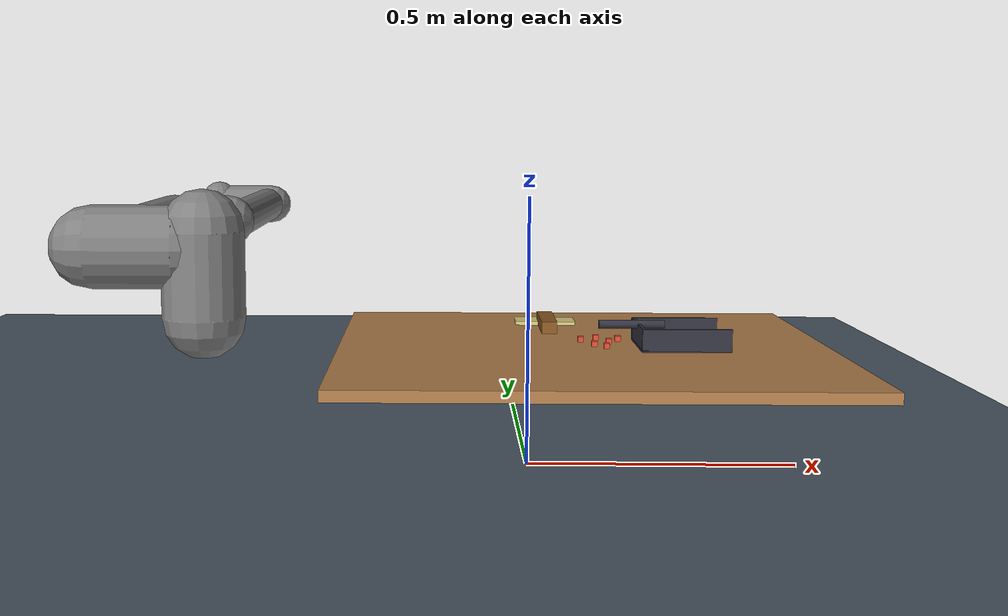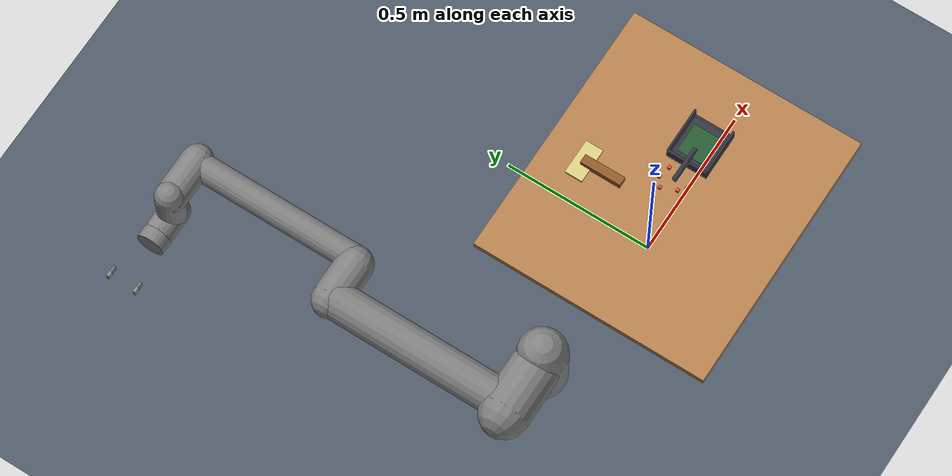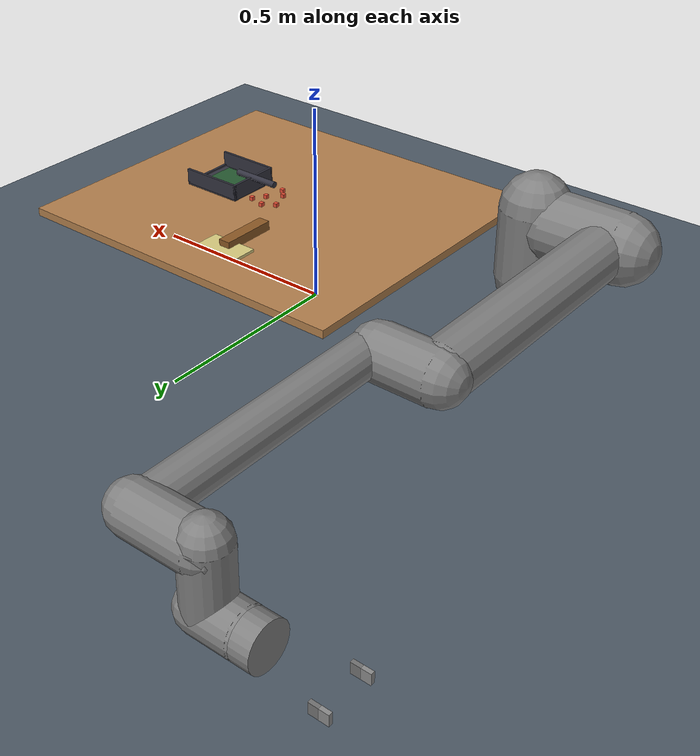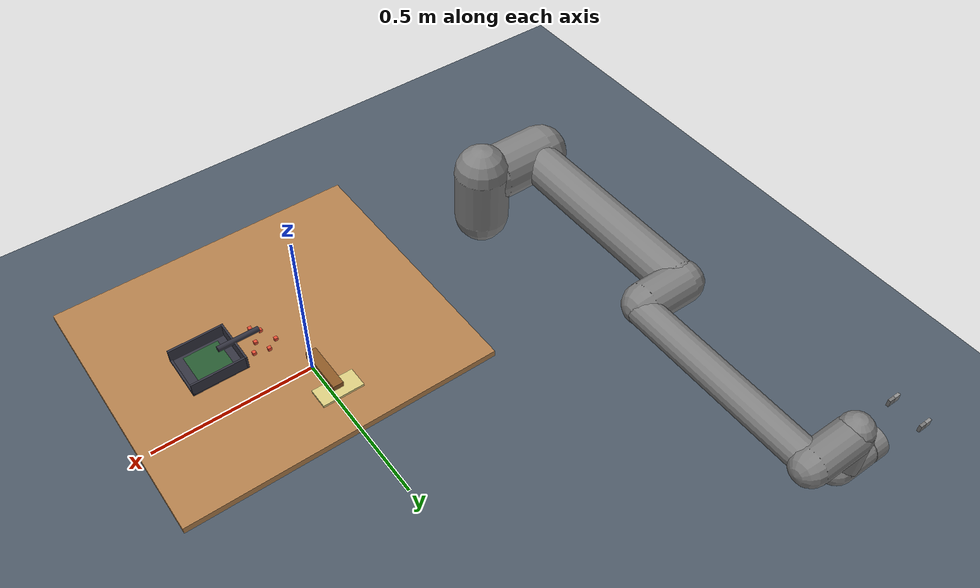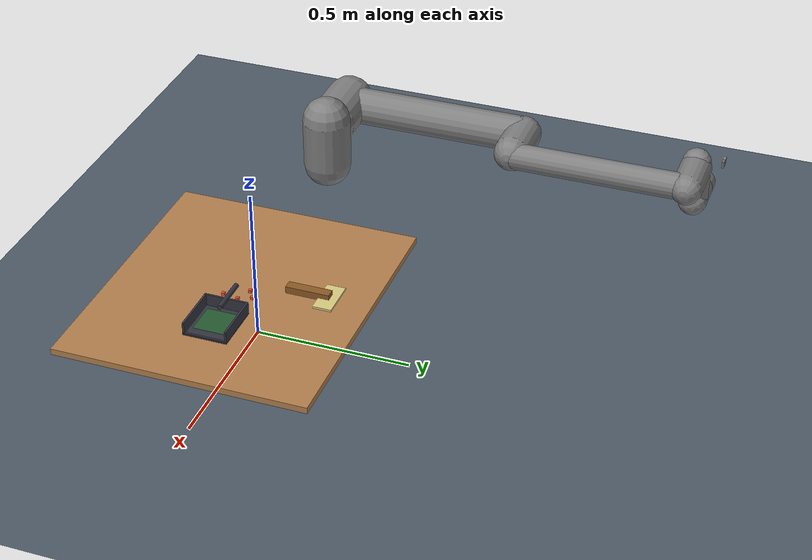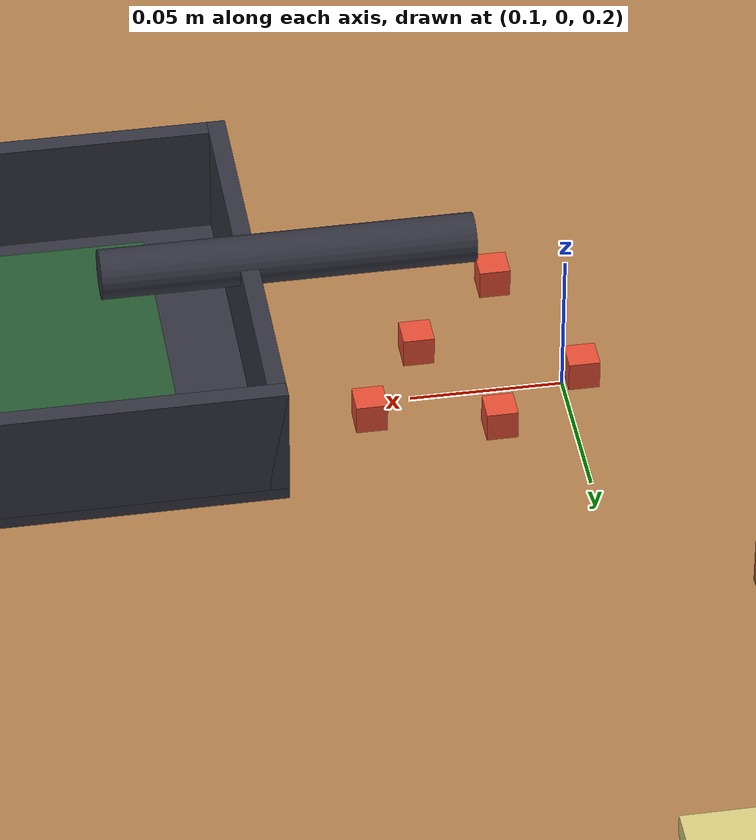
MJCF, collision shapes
<mujoco model="corl_dustpan_ur10e">

  <compiler angle="radian" autolimits="true"
            meshdir="../../../mujoco_menagerie/universal_robots_ur10e/assets"/>

  <include file="_ur10e_base.xml"/>

  <visual>
    <headlight diffuse="0.4 0.4 0.4" ambient="0.2 0.2 0.2" specular="0 0 0"/>
    <rgba haze="0.15 0.25 0.35 1"/>
    <global azimuth="120" elevation="-20" offwidth="800" offheight="600"/>
  </visual>

  <statistic center="0 0 0.5" extent="1.5"/>

  <asset>
    <texture type="skybox" builtin="gradient" rgb1="0.3 0.5 0.8"
             rgb2="0.1 0.2 0.4" width="512" height="3072"/>
    <texture type="2d" name="lab_floor" builtin="checker"
             rgb1="0.35 0.4 0.45" rgb2="0.25 0.3 0.35"
             width="512" height="512" mark="cross" markrgb="0.8 0.8 0.9"/>
    <material name="groundplane" texture="lab_floor" texrepeat="20 20"
              reflectance="0.3" shininess="0.1"/>
    <material name="table_mat" rgba="0.7 0.5 0.3 1"
              reflectance="0.4" shininess="0.3"/>

    <!-- Brush materials -->
    <material name="brush_handle_mat" rgba="0.55 0.35 0.15 1"
              reflectance="0.2" shininess="0.3"/>
    <material name="brush_bristles_mat" rgba="0.85 0.80 0.50 1"
              reflectance="0.05" shininess="0.05"/>

    <!-- Dustpan material -->
    <material name="dustpan_mat" rgba="0.2 0.2 0.25 1"
              reflectance="0.3" shininess="0.4"/>

    <!-- Debris material -->
    <material name="debris_mat" rgba="0.9 0.3 0.2 1"
              reflectance="0.1" shininess="0.1"/>
  </asset>

  <worldbody>
    <light pos="0 0 4" dir="0 0 -1" directional="true" diffuse="0.5 0.5 0.5"/>
    <light pos="2 2 3" dir="-0.5 -0.5 -1" diffuse="0.25 0.25 0.25"/>
    <light pos="0 -2 3" dir="0 0.5 -1" diffuse="0.2 0.2 0.2"/>
    <geom name="floor" size="10 10 0.01" type="plane" material="groundplane"/>

    <!-- Table: top surface at z=0.225 to match UR10e base height -->
    <body name="table" pos="0.1 0 0.215">
      <geom name="table_top" type="box" size="0.45 0.40 0.01"
            pos="0 0 0" material="table_mat"
            friction="1.5 0.8 0.001"/>
    </body>

    <!-- ================================================================
         TASK OBJECTS: dustpan, brush, debris
         ================================================================ -->

    <body name="brush" pos="0.05 0.20 0.236">
      <freejoint name="brush_free"/>
      <inertial pos="0 0 0" mass="0.10"
                diaginertia="0.00015 0.00002 0.00015"/>
      <!-- Handle: box along Y. Width 30mm gives firm Robotiq pad
           contact. The pad_box1/pad_box2 geoms are 9.375mm tall each,
           so a 30mm wide handle ensures full pad wrap. -->
      <geom name="brush_handle" type="box" size="0.015 0.070 0.012"
            pos="0 0 0"
            material="brush_handle_mat"
            condim="6" friction="3.0 1.5 0.005"
            solimp="0.9 0.95 0.005" solref="0.02 1"
            priority="1"/>
      <!-- Bristle pad: LARGE box extending below the handle at one end.
           120x60x12mm -- clearly visible as the sweeping surface.
           Friction high enough to push debris. -->
      <geom name="brush_bristles" type="box" size="0.060 0.030 0.008"
            pos="0 0.065 -0.012"
            material="brush_bristles_mat"
            condim="6" friction="1.5 0.8 0.005"
            solimp="0.9 0.95 0.005" solref="0.02 1"/>
      <!-- Bristle fringe: dark visual at bottom of bristle pad -->
      <geom name="brush_fringe" type="box" size="0.058 0.028 0.003"
            pos="0 0.065 -0.017"
            rgba="0.65 0.55 0.30 1"
            condim="6" friction="1.5 0.8 0.005"
            solimp="0.9 0.95 0.005" solref="0.02 1"/>
    </body>

    <body name="dustpan" pos="0.28 0.0 0.225">
      <!-- Pan floor -->
      <geom name="dustpan_floor" type="box" size="0.08 0.07 0.002"
            pos="0 0 0.002" material="dustpan_mat"
            friction="1.5 0.5 0.001"/>
      <!-- Back wall (far from opening, at -X side) -->
      <geom name="dustpan_back" type="box" size="0.003 0.07 0.020"
            pos="-0.077 0 0.022" material="dustpan_mat"/>
      <!-- Side walls -->
      <geom name="dustpan_left" type="box" size="0.08 0.003 0.020"
            pos="0 0.067 0.022" material="dustpan_mat"/>
      <geom name="dustpan_right" type="box" size="0.08 0.003 0.020"
            pos="0 -0.067 0.022" material="dustpan_mat"/>
      <!-- Front lip (low, just 5mm, so debris can slide in) -->
      <geom name="dustpan_lip" type="box" size="0.003 0.07 0.003"
            pos="0.077 0 0.005" material="dustpan_mat"/>
      <!-- Handle stub at the back -->
      <geom name="dustpan_handle" type="cylinder" size="0.008 0.06"
            pos="-0.090 0 0.040" quat="0.707107 0 0.707107 0"
            material="dustpan_mat" contype="0" conaffinity="0"/>
      <!-- Target site for measuring debris arrival -->
      <site name="dustpan_center" pos="0 0 0.010" size="0.05 0.05 0.001"
            rgba="0 1 0 0.15" type="box"/>
    </body>

    <!--
      Debris: 6 small cubes scattered between the brush and dustpan.
      Each is a 10mm cube with freejoint, placed on the table surface.
      Spread around x=0.20..0.30, y=-0.08..0.08.
    -->
    <body name="debris_1" pos="0.10 0.03 0.232">
      <freejoint name="debris_1_free"/>
      <inertial pos="0 0 0" mass="0.003" diaginertia="5e-8 5e-8 5e-8"/>
      <geom name="debris_1_geom" type="box" size="0.005 0.005 0.005"
            material="debris_mat" condim="6"
            friction="0.5 0.2 0.001" solref="0.02 1"
            solimp="0.9 0.95 0.005"/>
    </body>

    <body name="debris_2" pos="0.12 -0.02 0.232">
      <freejoint name="debris_2_free"/>
      <inertial pos="0 0 0" mass="0.003" diaginertia="5e-8 5e-8 5e-8"/>
      <geom name="debris_2_geom" type="box" size="0.005 0.005 0.005"
            material="debris_mat" condim="6"
            friction="0.5 0.2 0.001" solref="0.02 1"
            solimp="0.9 0.95 0.005"/>
    </body>

    <body name="debris_3" pos="0.15 0.01 0.232">
      <freejoint name="debris_3_free"/>
      <inertial pos="0 0 0" mass="0.003" diaginertia="5e-8 5e-8 5e-8"/>
      <geom name="debris_3_geom" type="box" size="0.005 0.005 0.005"
            material="debris_mat" condim="6"
            friction="0.5 0.2 0.001" solref="0.02 1"
            solimp="0.9 0.95 0.005"/>
    </body>

    <body name="debris_4" pos="0.14 -0.04 0.232">
      <freejoint name="debris_4_free"/>
      <inertial pos="0 0 0" mass="0.003" diaginertia="5e-8 5e-8 5e-8"/>
      <geom name="debris_4_geom" type="box" size="0.005 0.005 0.005"
            material="debris_mat" condim="6"
            friction="0.5 0.2 0.001" solref="0.02 1"
            solimp="0.9 0.95 0.005"/>
    </body>

    <body name="debris_5" pos="0.17 0.04 0.232">
      <freejoint name="debris_5_free"/>
      <inertial pos="0 0 0" mass="0.003" diaginertia="5e-8 5e-8 5e-8"/>
      <geom name="debris_5_geom" type="box" size="0.005 0.005 0.005"
            material="debris_mat" condim="6"
            friction="0.5 0.2 0.001" solref="0.02 1"
            solimp="0.9 0.95 0.005"/>
    </body>

    <body name="debris_6" pos="0.13 0.05 0.232">
      <freejoint name="debris_6_free"/>
      <inertial pos="0 0 0" mass="0.003" diaginertia="5e-8 5e-8 5e-8"/>
      <geom name="debris_6_geom" type="box" size="0.005 0.005 0.005"
            material="debris_mat" condim="6"
            friction="0.5 0.2 0.001" solref="0.02 1"
            solimp="0.9 0.95 0.005"/>
    </body>

    <!-- ================================================================
         CAMERAS
         ================================================================ -->
    <body name="cam_target" pos="0.2 0 0.25">
      <site name="cam_target_site" pos="0 0 0" size="0.001" rgba="0 0 0 0"/>
    </body>
    <body name="cam_agent_body" pos="1.2 0.0 0.8">
      <camera name="agentview" fovy="55" pos="0 0 0"
              mode="targetbody" target="cam_target"/>
    </body>
    <body name="cam_side_body" pos="0.2 -1.2 0.6">
      <camera name="sideview" fovy="55" pos="0 0 0"
              mode="targetbody" target="cam_target"/>
    </body>
    <body name="cam_top_body" pos="0.2 0 1.5">
      <camera name="topview" fovy="50" pos="0 0 0"
              mode="targetbody" target="cam_target"/>
    </body>
  </worldbody>

  <keyframe>
    <key name="home"
         qpos="0 -1.5708 1.5708 -1.5708 -1.5708 0 0 0 0 0 0 0 0 0
                0.05 0.20 0.236 1 0 0 0
                0.10 0.03 0.232 1 0 0 0
                0.12 -0.02 0.232 1 0 0 0
                0.15 0.01 0.232 1 0 0 0
                0.14 -0.04 0.232 1 0 0 0
                0.17 0.04 0.232 1 0 0 0
                0.13 0.05 0.232 1 0 0 0"
         ctrl="0 -1.5708 1.5708 -1.5708 -1.5708 0 0"/>
  </keyframe>
</mujoco>

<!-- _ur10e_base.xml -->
<mujoco model="ur10e_base">

  <option impratio="10" integrator="RK4" timestep="0.002"/>

  <default class="main">
    <default class="ur10e">
      <material shininess="0.25"/>
      <joint range="-6.28319 6.28319" armature="0.1"/>
      <general ctrlrange="-6.2831 6.2831" biastype="affine"
               gainprm="5000 0 0 0 0 0 0 0 0 0"
               biasprm="0 -5000 -500 0 0 0 0 0 0 0"/>
      <default class="size4">
        <joint damping="10"/>
        <general forcerange="-330 330"/>
      </default>
      <default class="size3">
        <joint damping="5"/>
        <general forcerange="-150 150"/>
        <default class="size3_limited">
          <joint range="-3.1415 3.1415"/>
          <general ctrlrange="-3.1415 3.1415"/>
        </default>
      </default>
      <default class="size2">
        <joint damping="2"/>
        <general forcerange="-56 56"/>
      </default>
      <default class="visual">
        <geom type="mesh" contype="0" conaffinity="0" group="2"/>
      </default>
      <default class="collision">
        <geom type="capsule" group="3"/>
        <default class="eef_collision">
          <geom type="cylinder"/>
        </default>
      </default>
    </default>
    <default class="2f85">
      <mesh scale="0.001 0.001 0.001"/>
      <general biastype="affine"/>
      <default class="driver">
        <joint solreflimit="0.005 1" solimplimit="0.95 0.99 0.001 0.5 2"
               range="0 0.8" armature="0.005" damping="0.1"/>
      </default>
      <default class="follower">
        <joint solreflimit="0.005 1" solimplimit="0.95 0.99 0.001 0.5 2"
               range="-0.872664 0.872664"/>
      </default>
      <default class="spring_link">
        <joint springref="2.62" stiffness="0.05" range="-0.296706 0.8"
               damping="0.00125"/>
      </default>
      <default class="coupler">
        <joint solreflimit="0.005 1" solimplimit="0.95 0.99 0.001 0.5 2"
               range="-1.57 0"/>
      </default>
      <default class="visual2">
        <geom type="mesh" contype="0" conaffinity="0" group="2"/>
      </default>
      <default class="collision2">
        <geom type="mesh" group="3"/>
        <default class="pad_box1">
          <geom size="0.011 0.004 0.009375" type="box" priority="1"
                friction="0.7 0.005 0.0001" solref="0.004 1"
                solimp="0.95 0.99 0.001 0.5 2" rgba="0.55 0.55 0.55 1"/>
        </default>
        <default class="pad_box2">
          <geom size="0.011 0.004 0.009375" type="box" priority="1"
                friction="0.6 0.005 0.0001" solref="0.004 1"
                solimp="0.95 0.99 0.001 0.5 2" rgba="0.45 0.45 0.45 1"/>
        </default>
      </default>
    </default>
  </default>

  <asset>
    <!-- UR10e materials -->
    <material name="black" class="ur10e" rgba="0.033 0.033 0.033 1"/>
    <material name="jointgray" class="ur10e" rgba="0.278 0.278 0.278 1"/>
    <material name="linkgray" class="ur10e" rgba="0.82 0.82 0.82 1"/>
    <material name="urblue" class="ur10e" rgba="0.49 0.678 0.8 1"/>
    <!-- Robotiq 2F-85 materials -->
    <material name="metal" rgba="0.58 0.58 0.58 1"/>
    <material name="silicone" rgba="0.1882 0.1882 0.1882 1"/>
    <material name="gray" rgba="0.4627 0.4627 0.4627 1"/>
    <material name="black2" rgba="0.149 0.149 0.149 1"/>

    <!-- UR10e meshes (resolved via parent meshdir) -->
    <mesh name="base_0" file="base_0.obj"/>
    <mesh name="base_1" file="base_1.obj"/>
    <mesh name="shoulder_0" file="shoulder_0.obj"/>
    <mesh name="shoulder_1" file="shoulder_1.obj"/>
    <mesh name="shoulder_2" file="shoulder_2.obj"/>
    <mesh name="upperarm_0" file="upperarm_0.obj"/>
    <mesh name="upperarm_1" file="upperarm_1.obj"/>
    <mesh name="upperarm_2" file="upperarm_2.obj"/>
    <mesh name="upperarm_3" file="upperarm_3.obj"/>
    <mesh name="forearm_0" file="forearm_0.obj"/>
    <mesh name="forearm_1" file="forearm_1.obj"/>
    <mesh name="forearm_2" file="forearm_2.obj"/>
    <mesh name="forearm_3" file="forearm_3.obj"/>
    <mesh name="wrist1_0" file="wrist1_0.obj"/>
    <mesh name="wrist1_1" file="wrist1_1.obj"/>
    <mesh name="wrist1_2" file="wrist1_2.obj"/>
    <mesh name="wrist2_0" file="wrist2_0.obj"/>
    <mesh name="wrist2_1" file="wrist2_1.obj"/>
    <mesh name="wrist2_2" file="wrist2_2.obj"/>
    <mesh name="wrist3" file="wrist3.obj"/>

    <!-- Robotiq 2F-85 meshes (relative to UR10e meshdir) -->
    <mesh name="base_mount" class="2f85"
          file="../../robotiq_2f85/assets/base_mount.stl"/>
    <mesh name="base" class="2f85"
          file="../../robotiq_2f85/assets/base.stl"/>
    <mesh name="driver" class="2f85"
          file="../../robotiq_2f85/assets/driver.stl"/>
    <mesh name="coupler" class="2f85"
          file="../../robotiq_2f85/assets/coupler.stl"/>
    <mesh name="follower" class="2f85"
          file="../../robotiq_2f85/assets/follower.stl"/>
    <mesh name="pad" class="2f85"
          file="../../robotiq_2f85/assets/pad.stl"/>
    <mesh name="silicone_pad" class="2f85"
          file="../../robotiq_2f85/assets/silicone_pad.stl"/>
    <mesh name="spring_link" class="2f85"
          file="../../robotiq_2f85/assets/spring_link.stl"/>
  </asset>

  <worldbody>
    <!-- UR10e + Robotiq 2F-85 kinematic chain.
         Base at (-0.6, 0, 0.225), rotated 90deg about Z to face +X. -->
    <body name="base" childclass="ur10e" pos="-0.6 0 0.225"
          quat="0.707107 0 0 0.707107" gravcomp="0">
      <inertial pos="0 0 0" mass="4" diaginertia="0.00610633 0.00610633 0.01125"/>
      <geom class="visual" material="black" mesh="base_0"/>
      <geom class="visual" material="jointgray" mesh="base_1"/>
      <body name="shoulder_link" pos="0 0 0.181" gravcomp="0">
        <inertial pos="0 0 0" mass="7.778"
                  diaginertia="0.0314743 0.0314743 0.0218756"/>
        <joint name="shoulder_pan_joint" class="size4" axis="0 0 1"/>
        <geom class="visual" material="urblue" mesh="shoulder_0"/>
        <geom class="visual" material="black" mesh="shoulder_1"/>
        <geom class="visual" material="jointgray" mesh="shoulder_2"/>
        <geom class="collision" size="0.078 0.08" pos="0 0 -0.05"/>
        <body name="upper_arm_link" pos="0 0.176 0" quat="0.707107 0 0.707107 0" gravcomp="0">
          <inertial pos="0 0 0.3065" mass="12.93"
                    diaginertia="0.423074 0.423074 0.0363656"/>
          <joint name="shoulder_lift_joint" class="size4" axis="0 1 0"/>
          <geom class="visual" material="black" mesh="upperarm_0"/>
          <geom class="visual" material="jointgray" mesh="upperarm_1"/>
          <geom class="visual" material="urblue" mesh="upperarm_2"/>
          <geom class="visual" material="linkgray" mesh="upperarm_3"/>
          <geom class="collision" size="0.078 0.08" pos="0 -0.05 0"
                quat="0.707107 0.707107 0 0"/>
          <geom class="collision" size="0.06 0.3" pos="0 0 0.3"/>
          <body name="forearm_link" pos="0 -0.137 0.613" gravcomp="0">
            <inertial pos="0 0 0.2855" mass="3.87"
                      diaginertia="0.11059 0.11059 0.0108844"/>
            <joint name="elbow_joint" class="size3_limited" axis="0 1 0"/>
            <geom class="visual" material="urblue" mesh="forearm_0"/>
            <geom class="visual" material="black" mesh="forearm_1"/>
            <geom class="visual" material="jointgray" mesh="forearm_2"/>
            <geom class="visual" material="linkgray" mesh="forearm_3"/>
            <geom class="collision" size="0.058 0.065" pos="0 0.08 0"
                  quat="0.707107 0.707107 0 0"/>
            <geom class="collision" size="0.043 0.28" pos="0 0 0.29"/>
            <body name="wrist_1_link" pos="0 0 0.571" quat="0.707107 0 0.707107 0" gravcomp="0">
              <inertial pos="0 0.135 0" quat="0.5 0.5 -0.5 0.5" mass="1.96"
                        diaginertia="0.0055125 0.00510825 0.00510825"/>
              <joint name="wrist_1_joint" class="size2" axis="0 1 0"/>
              <geom class="visual" material="black" mesh="wrist1_0"/>
              <geom class="visual" material="urblue" mesh="wrist1_1"/>
              <geom class="visual" material="jointgray" mesh="wrist1_2"/>
              <geom class="collision" size="0.05 0.07" pos="0 0.06 0"
                    quat="0.707107 0.707107 0 0"/>
              <body name="wrist_2_link" pos="0 0.135 0" gravcomp="0">
                <inertial pos="0 0 0.12" quat="0.5 0.5 -0.5 0.5" mass="1.96"
                          diaginertia="0.0055125 0.00510825 0.00510825"/>
                <joint name="wrist_2_joint" class="size2" axis="0 0 1"/>
                <geom class="visual" material="black" mesh="wrist2_0"/>
                <geom class="visual" material="urblue" mesh="wrist2_1"/>
                <geom class="visual" material="jointgray" mesh="wrist2_2"/>
                <geom class="collision" size="0.046 0.065" pos="0 0 0.05"/>
                <geom class="collision" size="0.046 0.043" pos="0 0.028 0.12"
                      quat="0.707107 0.707107 0 0"/>
                <body name="wrist_3_link" pos="0 0 0.12" gravcomp="0">
                  <inertial pos="0 0.092 0" quat="0 0.707107 -0.707107 0"
                            mass="0.202"
                            diaginertia="0.000204525 0.000144346 0.000144346"/>
                  <joint name="wrist_3_joint" class="size2" axis="0 1 0"/>
                  <geom class="visual" material="linkgray" mesh="wrist3"/>
                  <geom class="eef_collision" size="0.046 0.02" pos="0 0.097 0"
                        quat="0.707107 0.707107 0 0"/>
                  <site name="attachment_site" pos="0 0.1 0"
                        quat="-0.707107 0.707107 0 0"
                        size="0.001" group="4" rgba="255 0 0 1"/>
                  <site name="ft_sensor_site" pos="0 0.1 0"
                        quat="-0.707107 0.707107 0 0"
                        size="0.001" group="5" rgba="0 255 0 0.5"/>
                  <!-- Robotiq 2F-85 gripper -->
                  <body name="base_mount" childclass="2f85"
                        pos="0 0.115 0" quat="-0.707107 0.707107 0 0" gravcomp="0">
                    <geom class="visual2" material="black2" mesh="base_mount"/>
                    <geom class="collision2" mesh="base_mount"/>
                    <body name="base2" pos="0 0 0.0038"
                          quat="0.707107 0 0 -0.707107" gravcomp="0">
                      <inertial pos="0 -2.70394e-05 0.0354675"
                                quat="0.999999 -0.00152849 0 0"
                                mass="0.777441"
                                diaginertia="0.000260285 0.000225381 0.000152708"/>
                      <geom class="visual2" material="black2" mesh="base"/>
                      <geom class="collision2" mesh="base"/>
                      <site name="pinch" pos="0 0 0.145" group="5"
                            rgba="255 0.9 0.9 1"/>
                      <!-- Right finger linkage -->
                      <body name="right_driver" pos="0 0.0306011 0.054904" gravcomp="0">
                        <inertial pos="2.96931e-12 0.0177547 0.00107314"
                                  quat="0.681301 0.732003 0 0" mass="0.00899563"
                                  diaginertia="1.72352e-06 1.60906e-06 3.22006e-07"/>
                        <joint name="right_driver_joint" class="driver" axis="1 0 0" armature="0.01"/>
                        <geom class="visual2" material="gray" mesh="driver"/>
                        <geom class="collision2" mesh="driver"/>
                        <body name="right_coupler" pos="0 0.0315 -0.0041" gravcomp="0">
                          <inertial pos="0 0.00301209 0.0232175"
                                    quat="0.705636 -0.0455904 0.0455904 0.705636"
                                    mass="0.0140974"
                                    diaginertia="4.16206e-06 3.52216e-06 8.88131e-07"/>
                          <joint name="right_coupler_joint" class="coupler" axis="1 0 0"/>
                          <geom class="visual2" material="black2" mesh="coupler"/>
                          <geom class="collision2" mesh="coupler"/>
                        </body>
                      </body>
                      <body name="right_spring_link" pos="0 0.0132 0.0609" gravcomp="0">
                        <inertial pos="-8.65005e-09 0.0181624 0.0212658"
                                  quat="0.663403 -0.244737 0.244737 0.663403"
                                  mass="0.0221642"
                                  diaginertia="8.96853e-06 6.71733e-06 2.63931e-06"/>
                        <joint name="right_spring_link_joint" class="spring_link" axis="1 0 0"
                               springref="2.62" armature="0.001"/>
                        <geom class="visual2" material="black2" mesh="spring_link"/>
                        <geom class="collision2" mesh="spring_link"/>
                        <body name="right_follower" pos="0 0.055 0.0375" gravcomp="0">
                          <inertial pos="0 -0.011046 0.0124786"
                                    quat="0.986437 0.164143 0 0" mass="0.0125222"
                                    diaginertia="2.67415e-06 2.4559e-06 6.02031e-07"/>
                          <joint name="right_follower_joint" class="follower"
                                 pos="0 -0.018 0.0065" axis="1 0 0"/>
                          <geom class="visual2" material="black2" mesh="follower"/>
                          <geom class="collision2" mesh="follower"/>
                          <body name="right_pad" pos="0 -0.0189 0.01352" gravcomp="0">
                            <inertial pos="0 -0.0025 0.0185"
                                      quat="0.707107 0 0 0.707107" mass="0.0035"
                                      diaginertia="4.73958e-07 3.64583e-07 1.23958e-07"/>
                            <geom name="right_pad1" class="pad_box1"
                                  pos="0 -0.0026 0.028125" mass="0"/>
                            <geom name="right_pad2" class="pad_box2"
                                  pos="0 -0.0026 0.009375" mass="0"/>
                            <geom class="visual2" mesh="pad"/>
                            <body name="right_silicone_pad" gravcomp="0">
                              <geom class="visual2" material="black2" mesh="silicone_pad"/>
                            </body>
                          </body>
                        </body>
                      </body>
                      <!-- Left finger linkage -->
                      <body name="left_driver" pos="0 -0.0306011 0.054904"
                            quat="0 0 0 1" gravcomp="0">
                        <inertial pos="0 0.0177547 0.00107314"
                                  quat="0.681301 0.732003 0 0" mass="0.00899563"
                                  diaginertia="1.72352e-06 1.60906e-06 3.22006e-07"/>
                        <joint name="left_driver_joint" class="driver" axis="1 0 0" armature="0.01"/>
                        <geom class="visual2" material="gray" mesh="driver"/>
                        <geom class="collision2" mesh="driver"/>
                        <body name="left_coupler" pos="0 0.0315 -0.0041" gravcomp="0">
                          <inertial pos="0 0.00301209 0.0232175"
                                    quat="0.705636 -0.0455904 0.0455904 0.705636"
                                    mass="0.0140974"
                                    diaginertia="4.16206e-06 3.52216e-06 8.88131e-07"/>
                          <joint name="left_coupler_joint" class="coupler" axis="1 0 0"/>
                          <geom class="visual2" material="black2" mesh="coupler"/>
                          <geom class="collision2" mesh="coupler"/>
                        </body>
                      </body>
                      <body name="left_spring_link" pos="0 -0.0132 0.0609"
                            quat="0 0 0 1" gravcomp="0">
                        <inertial pos="-8.65005e-09 0.0181624 0.0212658"
                                  quat="0.663403 -0.244737 0.244737 0.663403"
                                  mass="0.0221642"
                                  diaginertia="8.96853e-06 6.71733e-06 2.63931e-06"/>
                        <joint name="left_spring_link_joint" class="spring_link"
                               axis="1 0 0" springref="2.62" armature="0.001"/>
                        <geom class="visual2" material="black2" mesh="spring_link"/>
                        <geom class="collision2" mesh="spring_link"/>
                        <body name="left_follower" pos="0 0.055 0.0375" gravcomp="0">
                          <inertial pos="0 -0.011046 0.0124786"
                                    quat="0.986437 0.164143 0 0" mass="0.0125222"
                                    diaginertia="2.67415e-06 2.4559e-06 6.02031e-07"/>
                          <joint name="left_follower_joint" class="follower"
                                 pos="0 -0.018 0.0065" axis="1 0 0"/>
                          <geom class="visual2" material="black2" mesh="follower"/>
                          <geom class="collision2" mesh="follower"/>
                          <body name="left_pad" pos="0 -0.0189 0.01352" gravcomp="0">
                            <inertial pos="0 -0.0025 0.0185"
                                      quat="0.707107 0 0 0.707107" mass="0.0035"
                                      diaginertia="4.73958e-07 3.64583e-07 1.23958e-07"/>
                            <geom name="left_pad1" class="pad_box1"
                                  pos="0 -0.0026 0.028125" mass="0"/>
                            <geom name="left_pad2" class="pad_box2"
                                  pos="0 -0.0026 0.009375" mass="0"/>
                            <geom class="visual2" mesh="pad"/>
                            <body name="left_silicone_pad" gravcomp="0">
                              <geom class="visual2" material="black2" mesh="silicone_pad"/>
                            </body>
                          </body>
                        </body>
                      </body>
                    </body>
                  </body>
                </body>
              </body>
            </body>
          </body>
        </body>
      </body>
    </body>
  </worldbody>

  <contact>
    <exclude body1="wrist_3_link" body2="right_driver"/>
    <exclude body1="wrist_3_link" body2="right_coupler"/>
    <exclude body1="wrist_3_link" body2="right_spring_link"/>
    <exclude body1="wrist_3_link" body2="right_follower"/>
    <exclude body1="wrist_3_link" body2="left_driver"/>
    <exclude body1="wrist_3_link" body2="left_coupler"/>
    <exclude body1="wrist_3_link" body2="left_spring_link"/>
    <exclude body1="wrist_3_link" body2="left_follower"/>
    <exclude body1="base2" body2="right_driver"/>
    <exclude body1="base2" body2="right_spring_link"/>
    <exclude body1="base2" body2="left_driver"/>
    <exclude body1="base2" body2="left_spring_link"/>
    <exclude body1="right_coupler" body2="right_follower"/>
    <exclude body1="left_coupler" body2="left_follower"/>
  </contact>

  <equality>
    <connect body1="right_follower" body2="right_coupler" anchor="0 0 0"
             solref="0.005 1" solimp="0.95 0.99 0.001 0.5 2"/>
    <connect body1="left_follower" body2="left_coupler" anchor="0 0 0"
             solref="0.005 1" solimp="0.95 0.99 0.001 0.5 2"/>
    <joint joint1="right_driver_joint" joint2="left_driver_joint"
           polycoef="0 1 0 0 0" solref="0.005 1"
           solimp="0.95 0.99 0.001 0.5 2"/>
  </equality>

  <tendon>
    <fixed name="split">
      <joint joint="right_driver_joint" coef="0.5"/>
      <joint joint="left_driver_joint" coef="0.5"/>
    </fixed>
  </tendon>

  <actuator>
    <general name="shoulder_pan" class="size4" joint="shoulder_pan_joint" actdim="0"/>
    <general name="shoulder_lift" class="size4" joint="shoulder_lift_joint" actdim="0"/>
    <general name="elbow" class="size3_limited" joint="elbow_joint" actdim="0"/>
    <general name="wrist_1" class="size2" joint="wrist_1_joint" actdim="0"/>
    <general name="wrist_2" class="size2" joint="wrist_2_joint" actdim="0"/>
    <general name="wrist_3" class="size2" joint="wrist_3_joint" actdim="0"/>
    <!-- Gripper: force boosted 5x vs stock for firm grasp.
         Stock: forcerange="-5 5", biasprm="0 -100 -10".
         Boosted: forcerange="-25 25", biasprm="0 -500 -50". -->
    <general name="fingers_actuator" class="2f85" tendon="split"
             ctrlrange="0 255" forcerange="-25 25" actdim="0"
             gainprm="1.56863 0 0 0 0 0 0 0 0 0"
             biasprm="0 -500 -50 0 0 0 0 0 0 0"/>
  </actuator>

  <sensor>
    <force name="wrist_force" site="ft_sensor_site"/>
    <torque name="wrist_torque" site="ft_sensor_site"/>
    <actuatorfrc name="gripper_force" actuator="fingers_actuator"/>
    <jointpos name="shoulder_pan_pos" joint="shoulder_pan_joint"/>
    <jointpos name="shoulder_lift_pos" joint="shoulder_lift_joint"/>
    <jointpos name="elbow_pos" joint="elbow_joint"/>
    <jointpos name="wrist_1_pos" joint="wrist_1_joint"/>
    <jointpos name="wrist_2_pos" joint="wrist_2_joint"/>
    <jointpos name="wrist_3_pos" joint="wrist_3_joint"/>
    <jointpos name="gripper_pos" joint="right_driver_joint"/>
  </sensor>
</mujoco>
